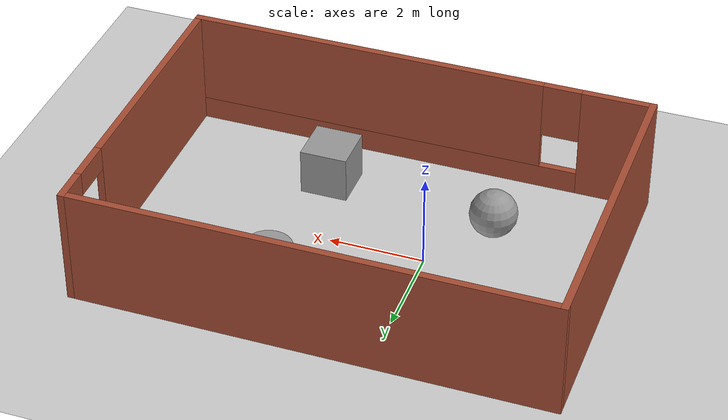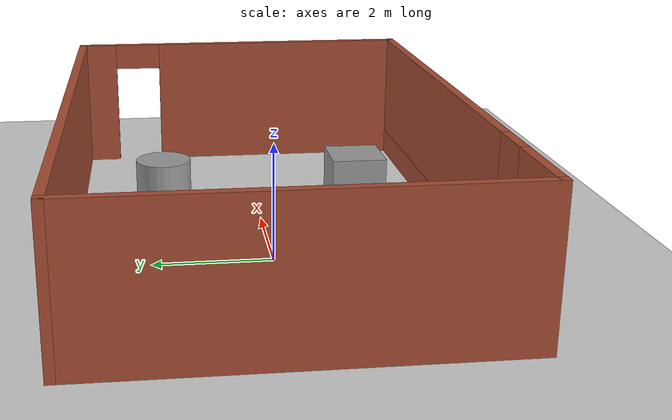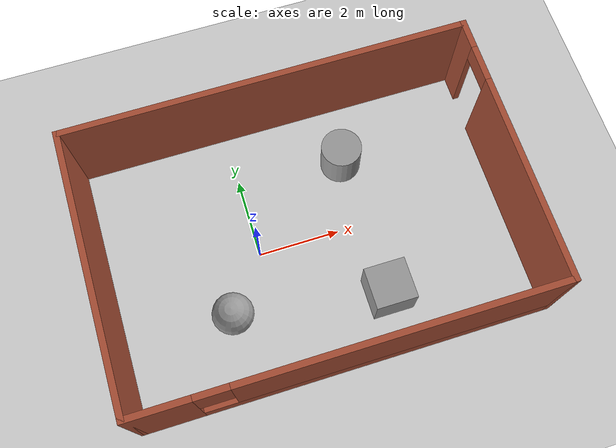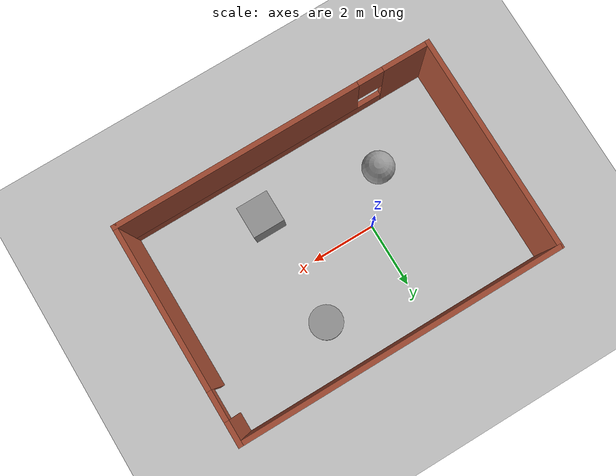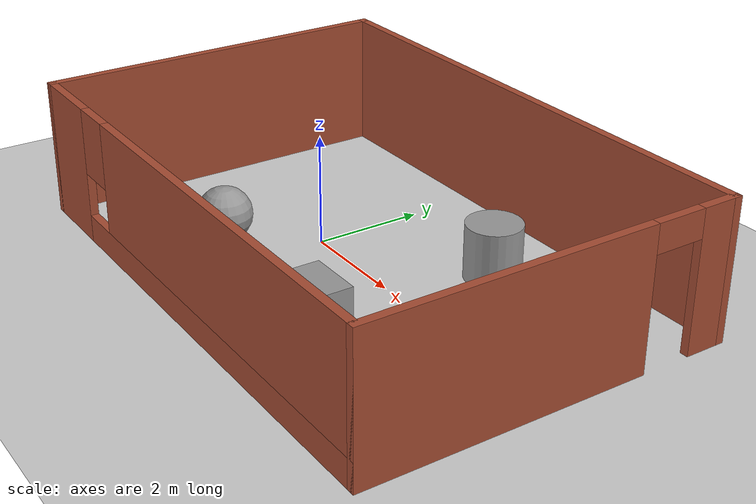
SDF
<sdf version="1.7">
 <world name="default">
  <light name="sun" type="directional">
   <pose>0 0 10 0 -0 0</pose>
   <diffuse>0.8 0.8 0.8 1</diffuse>
   <specular>0.2 0.2 0.2 1</specular>
   <attenuation>
    <range>1000</range>
    <constant>0.9</constant>
    <linear>0.01</linear>
    <quadratic>0.001</quadratic>
   </attenuation>
   <direction>-0.5 0.1 -0.9</direction>
   <spot><inner_angle>0</inner_angle><outer_angle>0</outer_angle><falloff>0</falloff></spot>
  </light>
  <model name="ground_plane">
   <static>1</static>
   <link name="link">
    <collision name="collision">
     <geometry><plane><normal>0 0 1</normal><size>100 100</size></plane></geometry>
     <surface>
      <contact><collide_bitmask>65535</collide_bitmask></contact>
      <friction><ode><mu>100</mu><mu2>50</mu2></ode></friction>
     </surface>
    </collision>
    <visual name="visual">
     <cast_shadows>0</cast_shadows>
     <geometry><plane><normal>0 0 1</normal><size>100 100</size></plane></geometry>
     <material>
      <script><uri>file://media/materials/scripts/gazebo.material</uri><name>Gazebo/Grey</name></script>
     </material>
    </visual>
   </link>
  </model>
  <gravity>0 0 -9.8</gravity>
  <magnetic_field>6e-06 2.3e-05 -4.2e-05</magnetic_field>
  <atmosphere type="adiabatic"/>
  <physics type="ode">
   <max_step_size>0.001</max_step_size>
   <real_time_factor>1</real_time_factor>
   <real_time_update_rate>1000</real_time_update_rate>
  </physics>
  <scene><ambient>0.4 0.4 0.4 1</ambient><background>0.7 0.7 0.7 1</background><shadows>1</shadows></scene>
  <spherical_coordinates>
   <surface_model>EARTH_WGS84</surface_model>
   <latitude_deg>0</latitude_deg>
   <longitude_deg>0</longitude_deg>
   <elevation>0</elevation>
   <heading_deg>0</heading_deg>
  </spherical_coordinates>
  <model name="create_robot_0">
   <pose>1.22173 1.63444 0 0 -0 0</pose>
   <link name="Wall_6">
    <collision name="Wall_6_Collision">
     <geometry><box><size>6.75 0.15 2.5</size></box></geometry>
     <pose>0 0 1.25 0 -0 0</pose>
    </collision>
    <visual name="Wall_6_Visual">
     <pose>0 0 1.25 0 -0 0</pose>
     <geometry><box><size>6.75 0.15 2.5</size></box></geometry>
     <material>
      <script><uri>file://media/materials/scripts/gazebo.material</uri><name>Gazebo/Bricks</name></script>
      <ambient>1 1 1 1</ambient>
     </material>
     <meta><layer>0</layer></meta>
    </visual>
    <pose>-4.925 -1.61669 0 0 -0 -1.5708</pose>
   </link>
   <link name="Wall_7">
    <pose>0 -4.91669 0 0 -0 0</pose>
    <visual name="Wall_7_Visual_0">
     <pose>-4.2325 0 1.25 0 -0 0</pose>
     <geometry><box><size>1.535 0.15 2.5</size></box></geometry>
     <material>
      <script><uri>file://media/materials/scripts/gazebo.material</uri><name>Gazebo/Bricks</name></script>
      <ambient>1 1 1 1</ambient>
     </material>
     <meta><layer>0</layer></meta>
    </visual>
    <collision name="Wall_7_Collision_0">
     <geometry><box><size>1.535 0.15 2.5</size></box></geometry>
     <pose>-4.2325 0 1.25 0 -0 0</pose>
    </collision>
    <visual name="Wall_7_Visual_1">
     <pose>0.7675 0 0.25 0 -0 0</pose>
     <geometry><box><size>8.465 0.15 0.5</size></box></geometry>
     <material>
      <script><uri>file://media/materials/scripts/gazebo.material</uri><name>Gazebo/Bricks</name></script>
      <ambient>1 1 1 1</ambient>
     </material>
     <meta><layer>0</layer></meta>
    </visual>
    <collision name="Wall_7_Collision_1">
     <geometry><box><size>8.465 0.15 0.5</size></box></geometry>
     <pose>0.7675 0 0.25 0 -0 0</pose>
    </collision>
    <visual name="Wall_7_Visual_2">
     <pose>1.1675 0 1.5 0 -0 0</pose>
     <geometry><box><size>7.665 0.15 2</size></box></geometry>
     <material>
      <script><uri>file://media/materials/scripts/gazebo.material</uri><name>Gazebo/Bricks</name></script>
      <ambient>1 1 1 1</ambient>
     </material>
     <meta><layer>0</layer></meta>
    </visual>
    <collision name="Wall_7_Collision_2">
     <geometry><box><size>7.665 0.15 2</size></box></geometry>
     <pose>1.1675 0 1.5 0 -0 0</pose>
    </collision>
    <visual name="Wall_7_Visual_3">
     <pose>-3.065 0 1.9 0 -0 0</pose>
     <geometry><box><size>0.8 0.15 1.2</size></box></geometry>
     <material>
      <script><uri>file://media/materials/scripts/gazebo.material</uri><name>Gazebo/Bricks</name></script>
      <ambient>1 1 1 1</ambient>
     </material>
     <meta><layer>0</layer></meta>
    </visual>
    <collision name="Wall_7_Collision_3">
     <geometry><box><size>0.8 0.15 1.2</size></box></geometry>
     <pose>-3.065 0 1.9 0 -0 0</pose>
    </collision>
   </link>
   <link name="Wall_8">
    <pose>4.925 -1.61669 0 0 -0 1.5708</pose>
    <visual name="Wall_8_Visual_0">
     <pose>-0.8275 0 1.25 0 -0 0</pose>
     <geometry><box><size>5.095 0.15 2.5</size></box></geometry>
     <material>
      <script><uri>file://media/materials/scripts/gazebo.material</uri><name>Gazebo/Bricks</name></script>
      <ambient>1 1 1 1</ambient>
     </material>
     <meta><layer>0</layer></meta>
    </visual>
    <collision name="Wall_8_Collision_0">
     <geometry><box><size>5.095 0.15 2.5</size></box></geometry>
     <pose>-0.8275 0 1.25 0 -0 0</pose>
    </collision>
    <visual name="Wall_8_Visual_1">
     <pose>2.9975 0 1.25 0 -0 0</pose>
     <geometry><box><size>0.755 0.15 2.5</size></box></geometry>
     <material>
      <script><uri>file://media/materials/scripts/gazebo.material</uri><name>Gazebo/Bricks</name></script>
      <ambient>1 1 1 1</ambient>
     </material>
     <meta><layer>0</layer></meta>
    </visual>
    <collision name="Wall_8_Collision_1">
     <geometry><box><size>0.755 0.15 2.5</size></box></geometry>
     <pose>2.9975 0 1.25 0 -0 0</pose>
    </collision>
    <visual name="Wall_8_Visual_2">
     <pose>2.17 0 2.25 0 -0 0</pose>
     <geometry><box><size>0.9 0.15 0.5</size></box></geometry>
     <material>
      <script><uri>file://media/materials/scripts/gazebo.material</uri><name>Gazebo/Bricks</name></script>
      <ambient>1 1 1 1</ambient>
     </material>
     <meta><layer>0</layer></meta>
    </visual>
    <collision name="Wall_8_Collision_2">
     <geometry><box><size>0.9 0.15 0.5</size></box></geometry>
     <pose>2.17 0 2.25 0 -0 0</pose>
    </collision>
   </link>
   <link name="Wall_9">
    <collision name="Wall_9_Collision">
     <geometry><box><size>10 0.15 2.5</size></box></geometry>
     <pose>0 0 1.25 0 -0 0</pose>
    </collision>
    <visual name="Wall_9_Visual">
     <pose>0 0 1.25 0 -0 0</pose>
     <geometry><box><size>10 0.15 2.5</size></box></geometry>
     <material>
      <script><uri>file://media/materials/scripts/gazebo.material</uri><name>Gazebo/Bricks</name></script>
      <ambient>1 1 1 1</ambient>
     </material>
     <meta><layer>0</layer></meta>
    </visual>
    <pose>0 1.68331 0 0 -0 3.14159</pose>
   </link>
   <static>1</static>
  </model>
  <model name="unit_sphere">
   <pose>-1.03184 -1.35391 0.5 0 -0 0</pose>
   <link name="link">
    <inertial>
     <mass>1</mass>
     <inertia><ixx>0.1</ixx><ixy>0</ixy><ixz>0</ixz><iyy>0.1</iyy><iyz>0</iyz><izz>0.1</izz></inertia>
    </inertial>
    <collision name="collision"><geometry><sphere><radius>0.5</radius></sphere></geometry></collision>
    <visual name="visual">
     <geometry><sphere><radius>0.5</radius></sphere></geometry>
     <material>
      <script><name>Gazebo/Grey</name><uri>file://media/materials/scripts/gazebo.material</uri></script>
     </material>
    </visual>
   </link>
  </model>
  <model name="unit_cylinder">
   <pose>2.62841 1.74344 0.5 0 -0 0</pose>
   <link name="link">
    <inertial>
     <mass>1</mass>
     <inertia><ixx>0.145833</ixx><ixy>0</ixy><ixz>0</ixz><iyy>0.145833</iyy><iyz>0</iyz><izz>0.125</izz></inertia>
    </inertial>
    <collision name="collision">
     <geometry><cylinder><radius>0.5</radius><length>1</length></cylinder></geometry>
    </collision>
    <visual name="visual">
     <geometry><cylinder><radius>0.5</radius><length>1</length></cylinder></geometry>
     <material>
      <script><name>Gazebo/Grey</name><uri>file://media/materials/scripts/gazebo.material</uri></script>
     </material>
    </visual>
   </link>
  </model>
  <model name="unit_box">
   <pose>2.64735 -1.86107 0.5 0 -0 0</pose>
   <link name="link">
    <inertial>
     <mass>1</mass>
     <inertia>
      <ixx>0.166667</ixx>
      <ixy>0</ixy>
      <ixz>0</ixz>
      <iyy>0.166667</iyy>
      <iyz>0</iyz>
      <izz>0.166667</izz>
     </inertia>
    </inertial>
    <collision name="collision"><geometry><box><size>1 1 1</size></box></geometry></collision>
    <visual name="visual">
     <geometry><box><size>1 1 1</size></box></geometry>
     <material>
      <script><name>Gazebo/Grey</name><uri>file://media/materials/scripts/gazebo.material</uri></script>
     </material>
    </visual>
   </link>
  </model>
 </world>
</sdf>
